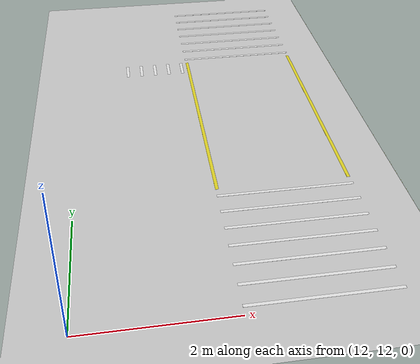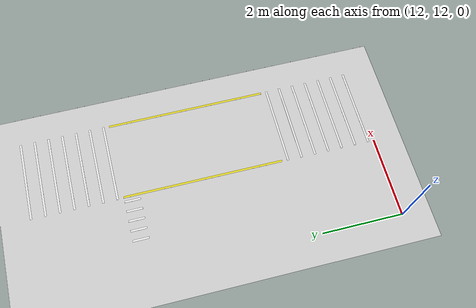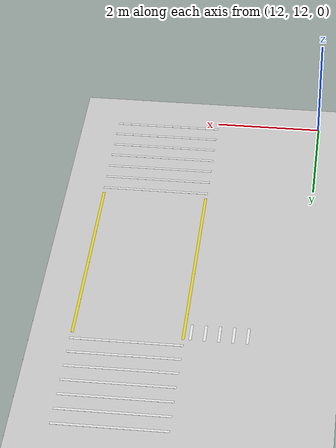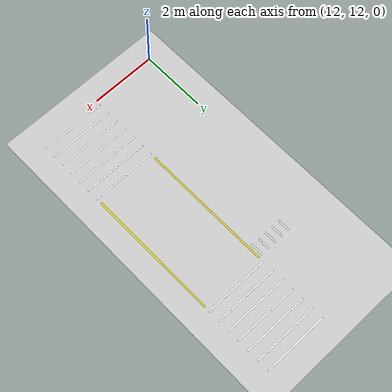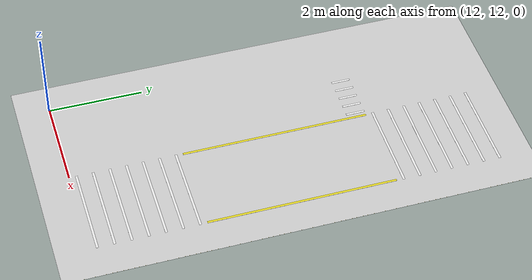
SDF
<sdf version="1.6">
 <world name="default">
  <model name="ground_plane">
   <static>1</static>
   <link name="link">
    <collision name="collision">
     <geometry><plane><normal>0 0 1</normal><size>100 100</size></plane></geometry>
     <surface><friction><ode><mu>100</mu><mu2>50</mu2></ode></friction></surface>
    </collision>
    <visual name="visual">
     <cast_shadows>0</cast_shadows>
     <geometry><plane><normal>0 0 1</normal><size>100 100</size></plane></geometry>
     <material>
      <script><uri>file://media/materials/scripts/gazebo.material</uri><name>Gazebo/Grey</name></script>
     </material>
    </visual>
   </link>
  </model>
  <model name="zebra_crossing_200cmx210cm_0">
   <link name="link_0">
    <inertial>
     <mass>1</mass>
     <inertia>
      <ixx>0.166667</ixx>
      <ixy>0</ixy>
      <ixz>0</ixz>
      <iyy>0.166667</iyy>
      <iyz>0</iyz>
      <izz>0.166667</izz>
     </inertia>
    </inertial>
    <visual name="ModelPreview_1::link_0::visual_6">
     <pose>-1.05 0 0 0 -0 0</pose>
     <geometry><box><size>0.05 2 0.001</size></box></geometry>
     <material>
      <lighting>1</lighting>
      <script><uri>file://media/materials/scripts/gazebo.material</uri><name>Gazebo/White</name></script>
     </material>
    </visual>
    <visual name="ModelPreview_1::link_0::visual_1">
     <pose>0.35 0 0 0 -0 0</pose>
     <geometry><box><size>0.05 2 0.001</size></box></geometry>
     <material>
      <lighting>1</lighting>
      <script><uri>file://media/materials/scripts/gazebo.material</uri><name>Gazebo/White</name></script>
     </material>
    </visual>
    <visual name="ModelPreview_1::link_0::visual_5">
     <pose>-0.7 0 0 0 -0 0</pose>
     <geometry><box><size>0.05 2 0.001</size></box></geometry>
     <material>
      <lighting>1</lighting>
      <script><uri>file://media/materials/scripts/gazebo.material</uri><name>Gazebo/White</name></script>
     </material>
    </visual>
    <visual name="ModelPreview_1::link_0::visual_3">
     <pose>1.05 0 0 0 -0 0</pose>
     <geometry><box><size>0.05 2 0.001</size></box></geometry>
     <material>
      <lighting>1</lighting>
      <script><uri>file://media/materials/scripts/gazebo.material</uri><name>Gazebo/White</name></script>
     </material>
    </visual>
    <visual name="ModelPreview_1::link_0::visual_2">
     <pose>0.7 0 0 0 -0 0</pose>
     <geometry><box><size>0.05 2 0.001</size></box></geometry>
     <material>
      <lighting>1</lighting>
      <script><uri>file://media/materials/scripts/gazebo.material</uri><name>Gazebo/White</name></script>
     </material>
    </visual>
    <visual name="visual">
     <geometry><box><size>0.05 2 0.001</size></box></geometry>
     <material>
      <lighting>1</lighting>
      <script><uri>file://media/materials/scripts/gazebo.material</uri><name>Gazebo/White</name></script>
     </material>
    </visual>
    <visual name="ModelPreview_1::link_0::visual_4">
     <pose>-0.35 0 0 0 -0 0</pose>
     <geometry><box><size>0.05 2 0.001</size></box></geometry>
     <material>
      <lighting>1</lighting>
      <script><uri>file://media/materials/scripts/gazebo.material</uri><name>Gazebo/White</name></script>
     </material>
    </visual>
    <collision name="collision_2">
     <pose>0.7 0 0 0 -0 0</pose>
     <geometry><box><size>0.05 2 1e-05</size></box></geometry>
    </collision>
    <collision name="collision_4">
     <pose>-0.35 0 0 0 -0 0</pose>
     <geometry><box><size>0.05 2 1e-05</size></box></geometry>
    </collision>
    <collision name="collision"><geometry><box><size>0.05 2 1e-05</size></box></geometry></collision>
    <collision name="collision_5">
     <pose>-0.7 0 0 0 -0 0</pose>
     <geometry><box><size>0.05 2 1e-05</size></box></geometry>
    </collision>
    <collision name="collision_1">
     <pose>0.35 0 0 0 -0 0</pose>
     <geometry><box><size>0.05 2 1e-05</size></box></geometry>
    </collision>
    <collision name="collision_3">
     <pose>1.05 0 0 0 -0 0</pose>
     <geometry><box><size>0.05 2 1e-05</size></box></geometry>
    </collision>
    <collision name="collision_6">
     <pose>-1.05 0 0 0 -0 0</pose>
     <geometry><box><size>0.05 2 1e-05</size></box></geometry>
    </collision>
   </link>
   <static>1</static>
   <pose>15 13.2 0 0 -0 1.5708</pose>
  </model>
  <model name="line4m_2">
   <link name="link_3">
    <inertial>
     <mass>1</mass>
     <inertia>
      <ixx>0.166667</ixx>
      <ixy>0</ixy>
      <ixz>0</ixz>
      <iyy>0.166667</iyy>
      <iyz>0</iyz>
      <izz>0.166667</izz>
     </inertia>
    </inertial>
    <visual name="visual">
     <geometry><box><size>0.05 4 0.001</size></box></geometry>
     <material>
      <lighting>1</lighting>
      <script><uri>file://media/materials/scripts/gazebo.material</uri><name>Gazebo/Yellow</name></script>
     </material>
    </visual>
    <collision name="collision"><geometry><box><size>0.05 4 1e-06</size></box></geometry></collision>
   </link>
   <static>1</static>
   <pose>15.975 16.4 0 0 -0 0</pose>
  </model>
  <model name="line4m_3">
   <link name="link_3">
    <inertial>
     <mass>1</mass>
     <inertia>
      <ixx>0.166667</ixx>
      <ixy>0</ixy>
      <ixz>0</ixz>
      <iyy>0.166667</iyy>
      <iyz>0</iyz>
      <izz>0.166667</izz>
     </inertia>
    </inertial>
    <visual name="visual">
     <geometry><box><size>0.05 4 0.001</size></box></geometry>
     <material>
      <lighting>1</lighting>
      <script><uri>file://media/materials/scripts/gazebo.material</uri><name>Gazebo/Yellow</name></script>
     </material>
    </visual>
    <collision name="collision"><geometry><box><size>0.05 4 1e-06</size></box></geometry></collision>
   </link>
   <static>1</static>
   <pose>14.025 16.4 0 0 -0 0</pose>
  </model>
  <model name="zebra_crossing_200cmx210cm_1">
   <link name="link_0">
    <inertial>
     <mass>1</mass>
     <inertia>
      <ixx>0.166667</ixx>
      <ixy>0</ixy>
      <ixz>0</ixz>
      <iyy>0.166667</iyy>
      <iyz>0</iyz>
      <izz>0.166667</izz>
     </inertia>
    </inertial>
    <visual name="ModelPreview_1::link_0::visual_6">
     <pose>-1.05 0 0 0 -0 0</pose>
     <geometry><box><size>0.05 2 0.001</size></box></geometry>
     <material>
      <lighting>1</lighting>
      <script><uri>file://media/materials/scripts/gazebo.material</uri><name>Gazebo/White</name></script>
     </material>
    </visual>
    <visual name="ModelPreview_1::link_0::visual_1">
     <pose>0.35 0 0 0 -0 0</pose>
     <geometry><box><size>0.05 2 0.001</size></box></geometry>
     <material>
      <lighting>1</lighting>
      <script><uri>file://media/materials/scripts/gazebo.material</uri><name>Gazebo/White</name></script>
     </material>
    </visual>
    <visual name="ModelPreview_1::link_0::visual_5">
     <pose>-0.7 0 0 0 -0 0</pose>
     <geometry><box><size>0.05 2 0.001</size></box></geometry>
     <material>
      <lighting>1</lighting>
      <script><uri>file://media/materials/scripts/gazebo.material</uri><name>Gazebo/White</name></script>
     </material>
    </visual>
    <visual name="ModelPreview_1::link_0::visual_3">
     <pose>1.05 0 0 0 -0 0</pose>
     <geometry><box><size>0.05 2 0.001</size></box></geometry>
     <material>
      <lighting>1</lighting>
      <script><uri>file://media/materials/scripts/gazebo.material</uri><name>Gazebo/White</name></script>
     </material>
    </visual>
    <visual name="ModelPreview_1::link_0::visual_2">
     <pose>0.7 0 0 0 -0 0</pose>
     <geometry><box><size>0.05 2 0.001</size></box></geometry>
     <material>
      <lighting>1</lighting>
      <script><uri>file://media/materials/scripts/gazebo.material</uri><name>Gazebo/White</name></script>
     </material>
    </visual>
    <visual name="visual">
     <geometry><box><size>0.05 2 0.001</size></box></geometry>
     <material>
      <lighting>1</lighting>
      <script><uri>file://media/materials/scripts/gazebo.material</uri><name>Gazebo/White</name></script>
     </material>
    </visual>
    <visual name="ModelPreview_1::link_0::visual_4">
     <pose>-0.35 0 0 0 -0 0</pose>
     <geometry><box><size>0.05 2 0.001</size></box></geometry>
     <material>
      <lighting>1</lighting>
      <script><uri>file://media/materials/scripts/gazebo.material</uri><name>Gazebo/White</name></script>
     </material>
    </visual>
    <collision name="collision_2">
     <pose>0.7 0 0 0 -0 0</pose>
     <geometry><box><size>0.05 2 1e-05</size></box></geometry>
    </collision>
    <collision name="collision_4">
     <pose>-0.35 0 0 0 -0 0</pose>
     <geometry><box><size>0.05 2 1e-05</size></box></geometry>
    </collision>
    <collision name="collision"><geometry><box><size>0.05 2 1e-05</size></box></geometry></collision>
    <collision name="collision_5">
     <pose>-0.7 0 0 0 -0 0</pose>
     <geometry><box><size>0.05 2 1e-05</size></box></geometry>
    </collision>
    <collision name="collision_1">
     <pose>0.35 0 0 0 -0 0</pose>
     <geometry><box><size>0.05 2 1e-05</size></box></geometry>
    </collision>
    <collision name="collision_3">
     <pose>1.05 0 0 0 -0 0</pose>
     <geometry><box><size>0.05 2 1e-05</size></box></geometry>
    </collision>
    <collision name="collision_6">
     <pose>-1.05 0 0 0 -0 0</pose>
     <geometry><box><size>0.05 2 1e-05</size></box></geometry>
    </collision>
   </link>
   <static>1</static>
   <pose>15 19.6 0 0 -0 1.5708</pose>
  </model>
  <model name="zebro_crossing_40cmx120cm_2">
   <link name="link_1">
    <inertial>
     <mass>1</mass>
     <inertia>
      <ixx>0.166667</ixx>
      <ixy>0</ixy>
      <ixz>0</ixz>
      <iyy>0.166667</iyy>
      <iyz>0</iyz>
      <izz>0.166667</izz>
     </inertia>
    </inertial>
    <visual name="ModelPreview_3::link_1::visual_4">
     <pose>-0.5 0 0 0 -0 0</pose>
     <geometry><box><size>0.05 0.4 0.001</size></box></geometry>
     <material>
      <lighting>1</lighting>
      <script><uri>file://media/materials/scripts/gazebo.material</uri><name>Gazebo/White</name></script>
     </material>
    </visual>
    <visual name="ModelPreview_3::link_1::visual_1">
     <pose>0.25 0 0 0 -0 0</pose>
     <geometry><box><size>0.05 0.4 0.001</size></box></geometry>
     <material>
      <lighting>1</lighting>
      <script><uri>file://media/materials/scripts/gazebo.material</uri><name>Gazebo/White</name></script>
     </material>
    </visual>
    <visual name="ModelPreview_3::link_1::visual_2">
     <pose>0.5 0 0 0 -0 0</pose>
     <geometry><box><size>0.05 0.4 0.001</size></box></geometry>
     <material>
      <lighting>1</lighting>
      <script><uri>file://media/materials/scripts/gazebo.material</uri><name>Gazebo/White</name></script>
     </material>
    </visual>
    <visual name="visual">
     <geometry><box><size>0.05 0.4 0.001</size></box></geometry>
     <material>
      <lighting>1</lighting>
      <script><uri>file://media/materials/scripts/gazebo.material</uri><name>Gazebo/White</name></script>
     </material>
    </visual>
    <visual name="ModelPreview_3::link_1::visual_3">
     <pose>-0.25 0 0 0 -0 0</pose>
     <geometry><box><size>0.05 0.4 0.001</size></box></geometry>
     <material>
      <lighting>1</lighting>
      <script><uri>file://media/materials/scripts/gazebo.material</uri><name>Gazebo/White</name></script>
     </material>
    </visual>
    <collision name="collision_1">
     <pose>0.25 0 0 0 -0 0</pose>
     <geometry><box><size>0.05 0.4 1e-06</size></box></geometry>
    </collision>
    <collision name="collision_2">
     <pose>0.5 0 0 0 -0 0</pose>
     <geometry><box><size>0.05 0.4 1e-06</size></box></geometry>
    </collision>
    <collision name="collision_3">
     <pose>-0.25 0 0 0 -0 0</pose>
     <geometry><box><size>0.05 0.4 1e-06</size></box></geometry>
    </collision>
    <collision name="collision"><geometry><box><size>0.05 0.4 1e-06</size></box></geometry></collision>
    <collision name="collision_4">
     <pose>-0.5 0 0 0 -0 0</pose>
     <geometry><box><size>0.05 0.4 1e-06</size></box></geometry>
    </collision>
   </link>
   <static>1</static>
   <pose>13.4036 18.2007 0 0 -0 0</pose>
  </model>
  <model name="line2160cm_0">
   <link name="link_4">
    <inertial>
     <mass>1</mass>
     <inertia>
      <ixx>0.166667</ixx>
      <ixy>0</ixy>
      <ixz>0</ixz>
      <iyy>0.166667</iyy>
      <iyz>0</iyz>
      <izz>0.166667</izz>
     </inertia>
    </inertial>
    <visual name="visual">
     <geometry><box><size>0.05 21.6 0.001</size></box></geometry>
     <material>
      <lighting>1</lighting>
      <script><uri>file://media/materials/scripts/gazebo.material</uri><name>Gazebo/Yellow</name></script>
     </material>
    </visual>
    <collision name="collision"><geometry><box><size>0.05 21.6 1e-05</size></box></geometry></collision>
   </link>
   <static>1</static>
   <pose>17.225 16.4 0 0 -0 0</pose>
  </model>
 </world>
</sdf>
